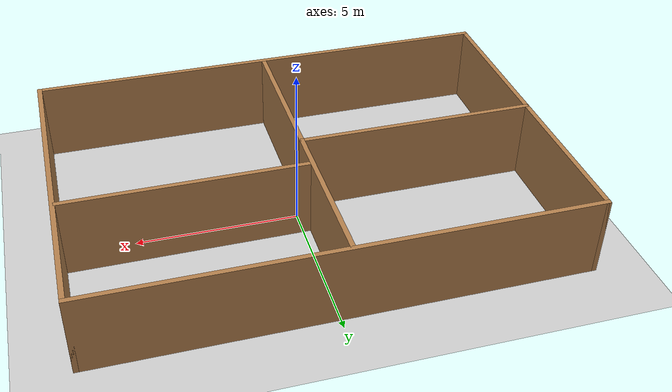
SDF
<sdf version="1.6">
 <world name="default">
  <model name="ground_plane">
   <static>1</static>
   <link name="link">
    <collision name="collision">
     <geometry><plane><normal>0 0 1</normal><size>100 100</size></plane></geometry>
     <surface>
      <contact><collide_bitmask>65535</collide_bitmask></contact>
      <friction><ode><mu>100</mu><mu2>50</mu2></ode></friction>
     </surface>
    </collision>
    <visual name="visual">
     <cast_shadows>0</cast_shadows>
     <geometry><plane><normal>0 0 1</normal><size>100 100</size></plane></geometry>
     <material>
      <script><uri>file://media/materials/scripts/gazebo.material</uri><name>Gazebo/Grey</name></script>
     </material>
    </visual>
   </link>
  </model>
  <model name="casita.world">
   <pose>-0.258251 -0.426372 0 0 -0 0</pose>
   <link name="Wall_1">
    <collision name="Wall_1_Collision">
     <geometry><box><size>10.25 0.15 2.5</size></box></geometry>
     <pose>0 0 1.25 0 -0 0</pose>
    </collision>
    <visual name="Wall_1_Visual">
     <pose>0 0 1.25 0 -0 0</pose>
     <geometry><box><size>10.25 0.15 2.5</size></box></geometry>
     <material>
      <script><uri>file://media/materials/scripts/gazebo.material</uri><name>Gazebo/Wood</name></script>
      <ambient>1 1 1 1</ambient>
     </material>
     <meta><layer>0</layer></meta>
    </visual>
    <pose>-7.425 -0 0 0 -0 1.5708</pose>
   </link>
   <link name="Wall_11">
    <collision name="Wall_11_Collision">
     <geometry><box><size>5 0.15 2.5</size></box></geometry>
     <pose>0 0 1.25 0 -0 0</pose>
    </collision>
    <visual name="Wall_11_Visual">
     <pose>0 0 1.25 0 -0 0</pose>
     <geometry><box><size>5 0.15 2.5</size></box></geometry>
     <material>
      <script><uri>file://media/materials/scripts/gazebo.material</uri><name>Gazebo/Wood</name></script>
      <ambient>1 1 1 1</ambient>
     </material>
     <meta><layer>0</layer></meta>
    </visual>
    <pose>-0.04441 -2.48879 0 0 -0 -1.5708</pose>
   </link>
   <link name="Wall_18">
    <collision name="Wall_18_Collision">
     <geometry><box><size>7.5 0.15 2.5</size></box></geometry>
     <pose>0 0 1.25 0 -0 0</pose>
    </collision>
    <visual name="Wall_18_Visual">
     <pose>0 0 1.25 0 -0 0</pose>
     <geometry><box><size>7.5 0.15 2.5</size></box></geometry>
     <material>
      <script><uri>file://media/materials/scripts/gazebo.material</uri><name>Gazebo/Wood</name></script>
      <ambient>1 1 1 1</ambient>
     </material>
     <meta><layer>0</layer></meta>
    </visual>
    <pose>3.65248 1.13406 0 0 -0 0</pose>
   </link>
   <link name="Wall_2">
    <collision name="Wall_2_Collision">
     <geometry><box><size>15 0.15 2.5</size></box></geometry>
     <pose>0 0 1.25 0 -0 0</pose>
    </collision>
    <visual name="Wall_2_Visual">
     <pose>0 0 1.25 0 -0 0</pose>
     <geometry><box><size>15 0.15 2.5</size></box></geometry>
     <material>
      <script><uri>file://media/materials/scripts/gazebo.material</uri><name>Gazebo/Wood</name></script>
      <ambient>1 1 1 1</ambient>
     </material>
     <meta><layer>0</layer></meta>
    </visual>
    <pose>-0 5.05 0 0 -0 0</pose>
   </link>
   <link name="Wall_3">
    <collision name="Wall_3_Collision">
     <geometry><box><size>10.25 0.15 2.5</size></box></geometry>
     <pose>0 0 1.25 0 -0 0</pose>
    </collision>
    <visual name="Wall_3_Visual">
     <pose>0 0 1.25 0 -0 0</pose>
     <geometry><box><size>10.25 0.15 2.5</size></box></geometry>
     <material>
      <script><uri>file://media/materials/scripts/gazebo.material</uri><name>Gazebo/Wood</name></script>
      <ambient>1 1 1 1</ambient>
     </material>
     <meta><layer>0</layer></meta>
    </visual>
    <pose>7.425 -0 0 0 -0 -1.5708</pose>
   </link>
   <link name="Wall_4">
    <collision name="Wall_4_Collision">
     <geometry><box><size>15 0.15 2.5</size></box></geometry>
     <pose>0 0 1.25 0 -0 0</pose>
    </collision>
    <visual name="Wall_4_Visual">
     <pose>0 0 1.25 0 -0 0</pose>
     <geometry><box><size>15 0.15 2.5</size></box></geometry>
     <material>
      <script><uri>file://media/materials/scripts/gazebo.material</uri><name>Gazebo/Wood</name></script>
      <ambient>1 1 1 1</ambient>
     </material>
     <meta><layer>0</layer></meta>
    </visual>
    <pose>-0 -5.05 0 0 -0 3.14159</pose>
   </link>
   <link name="Wall_6">
    <collision name="Wall_6_Collision">
     <geometry><box><size>7.5 0.15 2.5</size></box></geometry>
     <pose>0 0 1.25 0 -0 0</pose>
    </collision>
    <visual name="Wall_6_Visual">
     <pose>0 0 1.25 0 -0 0</pose>
     <geometry><box><size>7.5 0.15 2.5</size></box></geometry>
     <material>
      <script><uri>file://media/materials/scripts/gazebo.material</uri><name>Gazebo/Wood</name></script>
      <ambient>1 1 1 1</ambient>
     </material>
     <meta><layer>0</layer></meta>
    </visual>
    <pose>-3.71941 -0.063793 0 0 -0 0</pose>
   </link>
   <link name="Wall_7">
    <collision name="Wall_7_Collision">
     <geometry><box><size>5.25 0.15 2.5</size></box></geometry>
     <pose>0 0 1.25 0 -0 0</pose>
    </collision>
    <visual name="Wall_7_Visual">
     <pose>0 0 1.25 0 -0 0</pose>
     <geometry><box><size>5.25 0.15 2.5</size></box></geometry>
     <material>
      <script><uri>file://media/materials/scripts/gazebo.material</uri><name>Gazebo/Wood</name></script>
      <ambient>1 1 1 1</ambient>
     </material>
     <meta><layer>0</layer></meta>
    </visual>
    <pose>-0.04441 2.48621 0 0 -0 1.5708</pose>
   </link>
   <static>1</static>
  </model>
  <model name="cabinet_0">
   <static>1</static>
   <link name="cabinet_bottom_plate">
    <inertial>
     <pose>0 0 -1 0 -0 0</pose>
     <inertia><ixx>2.05</ixx><ixy>0</ixy><ixz>0</ixz><iyy>2.05</iyy><iyz>0</iyz><izz>2.05</izz></inertia>
     <mass>25</mass>
    </inertial>
    <collision name="cabinet_bottom_plate_geom">
     <pose>0 0 0.01 0 -0 0</pose>
     <geometry><box><size>0.45 0.45 0.02</size></box></geometry>
    </collision>
    <visual name="cabinet_bottom_plate_geom_visual">
     <pose>0 0 0.01 0 -0 0</pose>
     <geometry><box><size>0.45 0.45 0.02</size></box></geometry>
     <material>
      <script><uri>file://media/materials/scripts/gazebo.material</uri><name>Gazebo/Wood</name></script>
     </material>
    </visual>
    <collision name="cabinet_bottom_plate_geom_cabinet_back_plate">
     <pose>0.235 0 0.51 0 -0 0</pose>
     <geometry><box><size>0.02 0.45 1.02</size></box></geometry>
    </collision>
    <visual name="cabinet_bottom_plate_geom_cabinet_back_plate_visual">
     <pose>0.235 0 0.51 0 -0 0</pose>
     <geometry><box><size>0.02 0.45 1.02</size></box></geometry>
     <material>
      <script><uri>file://media/materials/scripts/gazebo.material</uri><name>Gazebo/Wood</name></script>
     </material>
    </visual>
    <collision name="cabinet_bottom_plate_geom_cabinet_left_plate">
     <pose>0 0.235 0.51 0 -0 0</pose>
     <geometry><box><size>0.45 0.02 1.02</size></box></geometry>
    </collision>
    <visual name="cabinet_bottom_plate_geom_cabinet_left_plate_visual">
     <pose>0 0.235 0.51 0 -0 0</pose>
     <geometry><box><size>0.45 0.02 1.02</size></box></geometry>
     <material>
      <script><uri>file://media/materials/scripts/gazebo.material</uri><name>Gazebo/Wood</name></script>
     </material>
    </visual>
    <collision name="cabinet_bottom_plate_geom_cabinet_middle_plate">
     <pose>0 0 0.51 0 -0 0</pose>
     <geometry><box><size>0.45 0.45 0.02</size></box></geometry>
    </collision>
    <visual name="cabinet_bottom_plate_geom_cabinet_middle_plate_visual">
     <pose>0 0 0.51 0 -0 0</pose>
     <geometry><box><size>0.45 0.45 0.02</size></box></geometry>
     <material>
      <script><uri>file://media/materials/scripts/gazebo.material</uri><name>Gazebo/Wood</name></script>
     </material>
    </visual>
    <collision name="cabinet_bottom_plate_geom_cabinet_right_plate">
     <pose>0 -0.235 0.51 0 -0 0</pose>
     <geometry><box><size>0.45 0.02 1.02</size></box></geometry>
    </collision>
    <visual name="cabinet_bottom_plate_geom_cabinet_right_plate_visual">
     <pose>0 -0.235 0.51 0 -0 0</pose>
     <geometry><box><size>0.45 0.02 1.02</size></box></geometry>
     <material>
      <script><uri>file://media/materials/scripts/gazebo.material</uri><name>Gazebo/Wood</name></script>
     </material>
    </visual>
    <collision name="cabinet_bottom_plate_geom_cabinet_top_plate">
     <pose>0 0 1.01 0 -0 0</pose>
     <geometry><box><size>0.45 0.45 0.02</size></box></geometry>
    </collision>
    <visual name="cabinet_bottom_plate_geom_cabinet_top_plate_visual">
     <pose>0 0 1.01 0 -0 0</pose>
     <geometry><box><size>0.45 0.45 0.02</size></box></geometry>
     <material>
      <script><uri>file://media/materials/scripts/gazebo.material</uri><name>Gazebo/Wood</name></script>
     </material>
    </visual>
   </link>
   <pose>0.105447 0.302774 0 0 -0 0</pose>
  </model>
  <model name="cabinet_1">
   <static>1</static>
   <link name="cabinet_bottom_plate">
    <inertial>
     <pose>0 0 -1 0 -0 0</pose>
     <inertia><ixx>2.05</ixx><ixy>0</ixy><ixz>0</ixz><iyy>2.05</iyy><iyz>0</iyz><izz>2.05</izz></inertia>
     <mass>25</mass>
    </inertial>
    <collision name="cabinet_bottom_plate_geom">
     <pose>0 0 0.01 0 -0 0</pose>
     <geometry><box><size>0.45 0.45 0.02</size></box></geometry>
    </collision>
    <visual name="cabinet_bottom_plate_geom_visual">
     <pose>0 0 0.01 0 -0 0</pose>
     <geometry><box><size>0.45 0.45 0.02</size></box></geometry>
     <material>
      <script><uri>file://media/materials/scripts/gazebo.material</uri><name>Gazebo/Wood</name></script>
     </material>
    </visual>
    <collision name="cabinet_bottom_plate_geom_cabinet_back_plate">
     <pose>0.235 0 0.51 0 -0 0</pose>
     <geometry><box><size>0.02 0.45 1.02</size></box></geometry>
    </collision>
    <visual name="cabinet_bottom_plate_geom_cabinet_back_plate_visual">
     <pose>0.235 0 0.51 0 -0 0</pose>
     <geometry><box><size>0.02 0.45 1.02</size></box></geometry>
     <material>
      <script><uri>file://media/materials/scripts/gazebo.material</uri><name>Gazebo/Wood</name></script>
     </material>
    </visual>
    <collision name="cabinet_bottom_plate_geom_cabinet_left_plate">
     <pose>0 0.235 0.51 0 -0 0</pose>
     <geometry><box><size>0.45 0.02 1.02</size></box></geometry>
    </collision>
    <visual name="cabinet_bottom_plate_geom_cabinet_left_plate_visual">
     <pose>0 0.235 0.51 0 -0 0</pose>
     <geometry><box><size>0.45 0.02 1.02</size></box></geometry>
     <material>
      <script><uri>file://media/materials/scripts/gazebo.material</uri><name>Gazebo/Wood</name></script>
     </material>
    </visual>
    <collision name="cabinet_bottom_plate_geom_cabinet_middle_plate">
     <pose>0 0 0.51 0 -0 0</pose>
     <geometry><box><size>0.45 0.45 0.02</size></box></geometry>
    </collision>
    <visual name="cabinet_bottom_plate_geom_cabinet_middle_plate_visual">
     <pose>0 0 0.51 0 -0 0</pose>
     <geometry><box><size>0.45 0.45 0.02</size></box></geometry>
     <material>
      <script><uri>file://media/materials/scripts/gazebo.material</uri><name>Gazebo/Wood</name></script>
     </material>
    </visual>
    <collision name="cabinet_bottom_plate_geom_cabinet_right_plate">
     <pose>0 -0.235 0.51 0 -0 0</pose>
     <geometry><box><size>0.45 0.02 1.02</size></box></geometry>
    </collision>
    <visual name="cabinet_bottom_plate_geom_cabinet_right_plate_visual">
     <pose>0 -0.235 0.51 0 -0 0</pose>
     <geometry><box><size>0.45 0.02 1.02</size></box></geometry>
     <material>
      <script><uri>file://media/materials/scripts/gazebo.material</uri><name>Gazebo/Wood</name></script>
     </material>
    </visual>
    <collision name="cabinet_bottom_plate_geom_cabinet_top_plate">
     <pose>0 0 1.01 0 -0 0</pose>
     <geometry><box><size>0.45 0.45 0.02</size></box></geometry>
    </collision>
    <visual name="cabinet_bottom_plate_geom_cabinet_top_plate_visual">
     <pose>0 0 1.01 0 -0 0</pose>
     <geometry><box><size>0.45 0.45 0.02</size></box></geometry>
     <material>
      <script><uri>file://media/materials/scripts/gazebo.material</uri><name>Gazebo/Wood</name></script>
     </material>
    </visual>
   </link>
   <pose>0.577168 0.304049 0 0 -0 0</pose>
  </model>
  <model name="cabinet_2">
   <static>1</static>
   <link name="cabinet_bottom_plate">
    <inertial>
     <pose>0 0 -1 0 -0 0</pose>
     <inertia><ixx>2.05</ixx><ixy>0</ixy><ixz>0</ixz><iyy>2.05</iyy><iyz>0</iyz><izz>2.05</izz></inertia>
     <mass>25</mass>
    </inertial>
    <collision name="cabinet_bottom_plate_geom">
     <pose>0 0 0.01 0 -0 0</pose>
     <geometry><box><size>0.45 0.45 0.02</size></box></geometry>
    </collision>
    <visual name="cabinet_bottom_plate_geom_visual">
     <pose>0 0 0.01 0 -0 0</pose>
     <geometry><box><size>0.45 0.45 0.02</size></box></geometry>
     <material>
      <script><uri>file://media/materials/scripts/gazebo.material</uri><name>Gazebo/Wood</name></script>
     </material>
    </visual>
    <collision name="cabinet_bottom_plate_geom_cabinet_back_plate">
     <pose>0.235 0 0.51 0 -0 0</pose>
     <geometry><box><size>0.02 0.45 1.02</size></box></geometry>
    </collision>
    <visual name="cabinet_bottom_plate_geom_cabinet_back_plate_visual">
     <pose>0.235 0 0.51 0 -0 0</pose>
     <geometry><box><size>0.02 0.45 1.02</size></box></geometry>
     <material>
      <script><uri>file://media/materials/scripts/gazebo.material</uri><name>Gazebo/Wood</name></script>
     </material>
    </visual>
    <collision name="cabinet_bottom_plate_geom_cabinet_left_plate">
     <pose>0 0.235 0.51 0 -0 0</pose>
     <geometry><box><size>0.45 0.02 1.02</size></box></geometry>
    </collision>
    <visual name="cabinet_bottom_plate_geom_cabinet_left_plate_visual">
     <pose>0 0.235 0.51 0 -0 0</pose>
     <geometry><box><size>0.45 0.02 1.02</size></box></geometry>
     <material>
      <script><uri>file://media/materials/scripts/gazebo.material</uri><name>Gazebo/Wood</name></script>
     </material>
    </visual>
    <collision name="cabinet_bottom_plate_geom_cabinet_middle_plate">
     <pose>0 0 0.51 0 -0 0</pose>
     <geometry><box><size>0.45 0.45 0.02</size></box></geometry>
    </collision>
    <visual name="cabinet_bottom_plate_geom_cabinet_middle_plate_visual">
     <pose>0 0 0.51 0 -0 0</pose>
     <geometry><box><size>0.45 0.45 0.02</size></box></geometry>
     <material>
      <script><uri>file://media/materials/scripts/gazebo.material</uri><name>Gazebo/Wood</name></script>
     </material>
    </visual>
    <collision name="cabinet_bottom_plate_geom_cabinet_right_plate">
     <pose>0 -0.235 0.51 0 -0 0</pose>
     <geometry><box><size>0.45 0.02 1.02</size></box></geometry>
    </collision>
    <visual name="cabinet_bottom_plate_geom_cabinet_right_plate_visual">
     <pose>0 -0.235 0.51 0 -0 0</pose>
     <geometry><box><size>0.45 0.02 1.02</size></box></geometry>
     <material>
      <script><uri>file://media/materials/scripts/gazebo.material</uri><name>Gazebo/Wood</name></script>
     </material>
    </visual>
    <collision name="cabinet_bottom_plate_geom_cabinet_top_plate">
     <pose>0 0 1.01 0 -0 0</pose>
     <geometry><box><size>0.45 0.45 0.02</size></box></geometry>
    </collision>
    <visual name="cabinet_bottom_plate_geom_cabinet_top_plate_visual">
     <pose>0 0 1.01 0 -0 0</pose>
     <geometry><box><size>0.45 0.45 0.02</size></box></geometry>
     <material>
      <script><uri>file://media/materials/scripts/gazebo.material</uri><name>Gazebo/Wood</name></script>
     </material>
    </visual>
   </link>
   <pose>1.1723 0.307758 0 0 -0 0</pose>
  </model>
  <model name="bookshelf_2">
   <static>1</static>
   <link name="link">
    <inertial><mass>1</mass></inertial>
    <collision name="back">
     <pose>0 0.005 0.6 0 -0 0</pose>
     <geometry><box><size>0.9 0.01 1.2</size></box></geometry>
    </collision>
    <visual name="visual1">
     <pose>0 0.005 0.6 0 -0 0</pose>
     <geometry><box><size>0.9 0.01 1.2</size></box></geometry>
     <material>
      <script><uri>file://media/materials/scripts/gazebo.material</uri><name>Gazebo/Wood</name></script>
     </material>
    </visual>
    <collision name="left_side">
     <pose>0.45 -0.195 0.6 0 -0 0</pose>
     <geometry><box><size>0.02 0.4 1.2</size></box></geometry>
    </collision>
    <visual name="visual2">
     <pose>0.45 -0.195 0.6 0 -0 0</pose>
     <geometry><box><size>0.02 0.4 1.2</size></box></geometry>
     <material>
      <script><uri>file://media/materials/scripts/gazebo.material</uri><name>Gazebo/Wood</name></script>
     </material>
    </visual>
    <collision name="right_side">
     <pose>-0.45 -0.195 0.6 0 -0 0</pose>
     <geometry><box><size>0.02 0.4 1.2</size></box></geometry>
    </collision>
    <visual name="visual3">
     <pose>-0.45 -0.195 0.6 0 -0 0</pose>
     <geometry><box><size>0.02 0.4 1.2</size></box></geometry>
     <material>
      <script><uri>file://media/materials/scripts/gazebo.material</uri><name>Gazebo/Wood</name></script>
     </material>
    </visual>
    <collision name="bottom">
     <pose>0 -0.195 0.03 0 -0 0</pose>
     <geometry><box><size>0.88 0.4 0.06</size></box></geometry>
    </collision>
    <visual name="visual4">
     <pose>0 -0.195 0.03 0 -0 0</pose>
     <geometry><box><size>0.88 0.4 0.06</size></box></geometry>
     <material>
      <script><uri>file://media/materials/scripts/gazebo.material</uri><name>Gazebo/Wood</name></script>
     </material>
    </visual>
    <collision name="top">
     <pose>0 -0.195 1.19 0 -0 0</pose>
     <geometry><box><size>0.88 0.4 0.02</size></box></geometry>
    </collision>
    <visual name="visual5">
     <pose>0 -0.195 1.19 0 -0 0</pose>
     <geometry><box><size>0.88 0.4 0.02</size></box></geometry>
     <material>
      <script><uri>file://media/materials/scripts/gazebo.material</uri><name>Gazebo/Wood</name></script>
     </material>
    </visual>
    <collision name="low_shelf">
     <pose>0 -0.195 0.43 0 -0 0</pose>
     <geometry><box><size>0.88 0.4 0.02</size></box></geometry>
    </collision>
    <visual name="visual6">
     <pose>0 -0.195 0.43 0 -0 0</pose>
     <geometry><box><size>0.88 0.4 0.02</size></box></geometry>
     <material>
      <script><uri>file://media/materials/scripts/gazebo.material</uri><name>Gazebo/Wood</name></script>
     </material>
    </visual>
    <collision name="high_shelf">
     <pose>0 -0.195 0.8 0 -0 0</pose>
     <geometry><box><size>0.88 0.4 0.02</size></box></geometry>
    </collision>
    <visual name="visual7">
     <pose>0 -0.195 0.8 0 -0 0</pose>
     <geometry><box><size>0.88 0.4 0.02</size></box></geometry>
     <material>
      <script><uri>file://media/materials/scripts/gazebo.material</uri><name>Gazebo/Wood</name></script>
     </material>
    </visual>
   </link>
   <pose>2.02989 0.513747 0 0 -0 0</pose>
  </model>
 </world>
</sdf>
